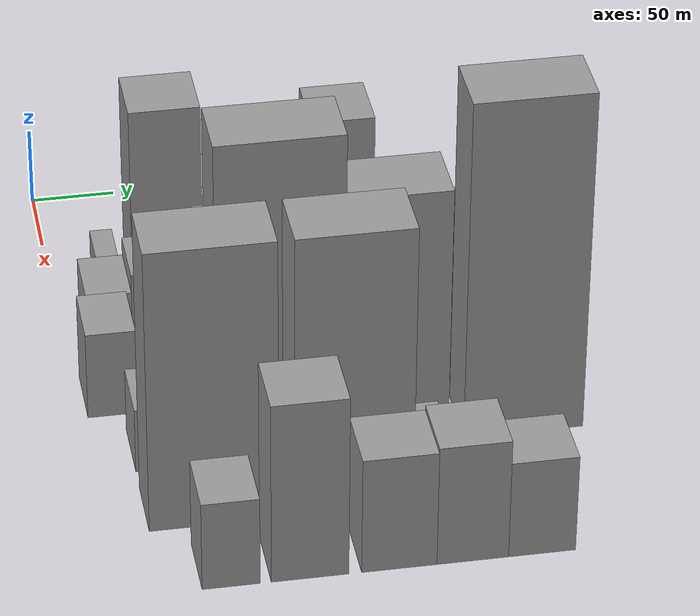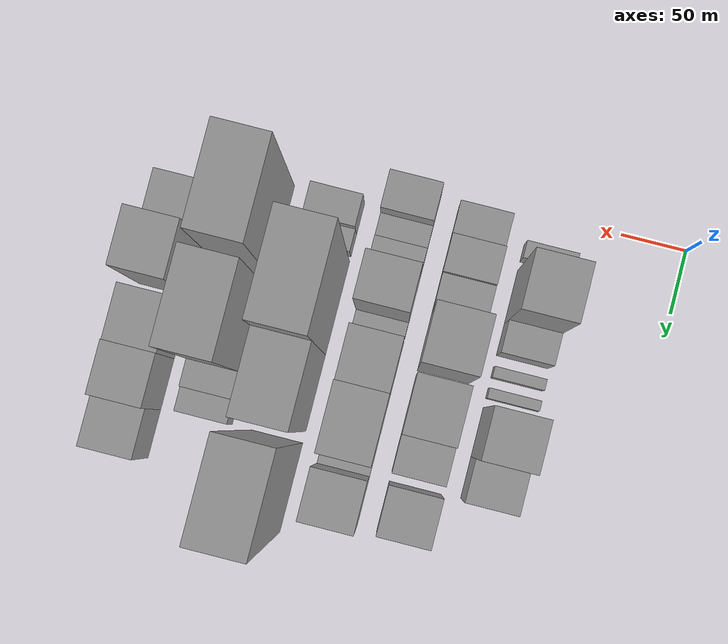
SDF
<sdf version="1.6">
 <world name="default">
  <model name="building_24">
   <static>1</static>
   <pose>100.0000 32.5815 0 0.000000 0.000000 0.000000</pose>
   <link name="link">
    <pose>0 0 13.50 0 0 0</pose>
    <collision name="collision"><geometry><box><size>40.0000 13.2220 27.0000</size></box></geometry></collision>
    <visual name="visual">
     <cast_shadows>0</cast_shadows>
     <geometry><box><size>40.0000 13.2220 27.0000</size></box></geometry>
     <material>
      <script>
       <uri>model://grey_wall/materials/scripts</uri>
       <uri>model://grey_wall/materials/textures</uri>
       <name>vrc/grey_wall</name>
      </script>
     </material>
    </visual>
   </link>
  </model>
  <model name="building_25">
   <static>1</static>
   <pose>100.0000 67.2017 0 0.000000 0.000000 0.000000</pose>
   <link name="link">
    <pose>0 0 66.00 0 0 0</pose>
    <collision name="collision"><geometry><box><size>40.0000 42.0183 132.0000</size></box></geometry></collision>
    <visual name="visual">
     <cast_shadows>0</cast_shadows>
     <geometry><box><size>40.0000 42.0183 132.0000</size></box></geometry>
     <material>
      <script>
       <uri>model://grey_wall/materials/scripts</uri>
       <uri>model://grey_wall/materials/textures</uri>
       <name>vrc/grey_wall</name>
      </script>
     </material>
    </visual>
   </link>
  </model>
  <model name="building_26">
   <static>1</static>
   <pose>100.0000 100.3961 0 0.000000 0.000000 0.000000</pose>
   <link name="link">
    <pose>0 0 22.50 0 0 0</pose>
    <collision name="collision"><geometry><box><size>40.0000 24.3704 45.0000</size></box></geometry></collision>
    <visual name="visual">
     <cast_shadows>0</cast_shadows>
     <geometry><box><size>40.0000 24.3704 45.0000</size></box></geometry>
     <material>
      <script>
       <uri>model://grey_wall/materials/scripts</uri>
       <uri>model://grey_wall/materials/textures</uri>
       <name>vrc/grey_wall</name>
      </script>
     </material>
    </visual>
   </link>
  </model>
  <model name="building_27">
   <static>1</static>
   <pose>100.0000 125.8456 0 0.000000 0.000000 0.000000</pose>
   <link name="link">
    <pose>0 0 9.00 0 0 0</pose>
    <collision name="collision"><geometry><box><size>40.0000 8.5287 18.0000</size></box></geometry></collision>
    <visual name="visual">
     <cast_shadows>0</cast_shadows>
     <geometry><box><size>40.0000 8.5287 18.0000</size></box></geometry>
     <material>
      <script>
       <uri>model://grey_wall/materials/scripts</uri>
       <uri>model://grey_wall/materials/textures</uri>
       <name>vrc/grey_wall</name>
      </script>
     </material>
    </visual>
   </link>
  </model>
  <model name="building_28">
   <static>1</static>
   <pose>100.0000 142.0890 0 0.000000 0.000000 0.000000</pose>
   <link name="link">
    <pose>0 0 9.00 0 0 0</pose>
    <collision name="collision"><geometry><box><size>40.0000 7.9579 18.0000</size></box></geometry></collision>
    <visual name="visual">
     <cast_shadows>0</cast_shadows>
     <geometry><box><size>40.0000 7.9579 18.0000</size></box></geometry>
     <material>
      <script>
       <uri>model://grey_wall/materials/scripts</uri>
       <uri>model://grey_wall/materials/textures</uri>
       <name>vrc/grey_wall</name>
      </script>
     </material>
    </visual>
   </link>
  </model>
  <model name="building_29">
   <static>1</static>
   <pose>100.0000 172.0794 0 0.000000 0.000000 0.000000</pose>
   <link name="link">
    <pose>0 0 57.00 0 0 0</pose>
    <collision name="collision"><geometry><box><size>40.0000 38.0229 114.0000</size></box></geometry></collision>
    <visual name="visual">
     <cast_shadows>0</cast_shadows>
     <geometry><box><size>40.0000 38.0229 114.0000</size></box></geometry>
     <material>
      <script>
       <uri>model://grey_wall/materials/scripts</uri>
       <uri>model://grey_wall/materials/textures</uri>
       <name>vrc/grey_wall</name>
      </script>
     </material>
    </visual>
   </link>
  </model>
  <model name="building_30">
   <static>1</static>
   <pose>100.0000 207.0768 0 0.000000 0.000000 0.000000</pose>
   <link name="link">
    <pose>0 0 30.00 0 0 0</pose>
    <collision name="collision"><geometry><box><size>40.0000 31.9721 60.0000</size></box></geometry></collision>
    <visual name="visual">
     <cast_shadows>0</cast_shadows>
     <geometry><box><size>40.0000 31.9721 60.0000</size></box></geometry>
     <material>
      <script>
       <uri>model://grey_wall/materials/scripts</uri>
       <uri>model://grey_wall/materials/textures</uri>
       <name>vrc/grey_wall</name>
      </script>
     </material>
    </visual>
   </link>
  </model>
  <model name="building_75">
   <static>1</static>
   <pose>155.0000 25.5011 0 0.000000 0.000000 0.000000</pose>
   <link name="link">
    <pose>0 0 22.50 0 0 0</pose>
    <collision name="collision"><geometry><box><size>40.0000 26.5037 45.0000</size></box></geometry></collision>
    <visual name="visual">
     <cast_shadows>0</cast_shadows>
     <geometry><box><size>40.0000 26.5037 45.0000</size></box></geometry>
     <material>
      <script>
       <uri>model://grey_wall/materials/scripts</uri>
       <uri>model://grey_wall/materials/textures</uri>
       <name>vrc/grey_wall</name>
      </script>
     </material>
    </visual>
   </link>
  </model>
  <model name="building_76">
   <static>1</static>
   <pose>155.0000 53.0796 0 0.000000 0.000000 0.000000</pose>
   <link name="link">
    <pose>0 0 28.50 0 0 0</pose>
    <collision name="collision"><geometry><box><size>40.0000 28.6533 57.0000</size></box></geometry></collision>
    <visual name="visual">
     <cast_shadows>0</cast_shadows>
     <geometry><box><size>40.0000 28.6533 57.0000</size></box></geometry>
     <material>
      <script>
       <uri>model://grey_wall/materials/scripts</uri>
       <uri>model://grey_wall/materials/textures</uri>
       <name>vrc/grey_wall</name>
      </script>
     </material>
    </visual>
   </link>
  </model>
  <model name="building_77">
   <static>1</static>
   <pose>155.0000 81.7268 0 0.000000 0.000000 0.000000</pose>
   <link name="link">
    <pose>0 0 25.50 0 0 0</pose>
    <collision name="collision"><geometry><box><size>40.0000 28.6413 51.0000</size></box></geometry></collision>
    <visual name="visual">
     <cast_shadows>0</cast_shadows>
     <geometry><box><size>40.0000 28.6413 51.0000</size></box></geometry>
     <material>
      <script>
       <uri>model://grey_wall/materials/scripts</uri>
       <uri>model://grey_wall/materials/textures</uri>
       <name>vrc/grey_wall</name>
      </script>
     </material>
    </visual>
   </link>
  </model>
  <model name="building_78">
   <static>1</static>
   <pose>155.0000 117.2070 0 0.000000 0.000000 0.000000</pose>
   <link name="link">
    <pose>0 0 67.50 0 0 0</pose>
    <collision name="collision"><geometry><box><size>40.0000 42.3190 135.0000</size></box></geometry></collision>
    <visual name="visual">
     <cast_shadows>0</cast_shadows>
     <geometry><box><size>40.0000 42.3190 135.0000</size></box></geometry>
     <material>
      <script>
       <uri>model://grey_wall/materials/scripts</uri>
       <uri>model://grey_wall/materials/textures</uri>
       <name>vrc/grey_wall</name>
      </script>
     </material>
    </visual>
   </link>
  </model>
  <model name="building_79">
   <static>1</static>
   <pose>155.0000 164.8329 0 0.000000 0.000000 0.000000</pose>
   <link name="link">
    <pose>0 0 37.50 0 0 0</pose>
    <collision name="collision"><geometry><box><size>40.0000 44.9328 75.0000</size></box></geometry></collision>
    <visual name="visual">
     <cast_shadows>0</cast_shadows>
     <geometry><box><size>40.0000 44.9328 75.0000</size></box></geometry>
     <material>
      <script>
       <uri>model://grey_wall/materials/scripts</uri>
       <uri>model://grey_wall/materials/textures</uri>
       <name>vrc/grey_wall</name>
      </script>
     </material>
    </visual>
   </link>
  </model>
  <model name="building_80">
   <static>1</static>
   <pose>155.0000 201.5827 0 0.000000 0.000000 0.000000</pose>
   <link name="link">
    <pose>0 0 27.00 0 0 0</pose>
    <collision name="collision"><geometry><box><size>40.0000 28.5667 54.0000</size></box></geometry></collision>
    <visual name="visual">
     <cast_shadows>0</cast_shadows>
     <geometry><box><size>40.0000 28.5667 54.0000</size></box></geometry>
     <material>
      <script>
       <uri>model://grey_wall/materials/scripts</uri>
       <uri>model://grey_wall/materials/textures</uri>
       <name>vrc/grey_wall</name>
      </script>
     </material>
    </visual>
   </link>
  </model>
  <model name="building_81">
   <static>1</static>
   <pose>155.0000 242.4506 0 0.000000 0.000000 0.000000</pose>
   <link name="link">
    <pose>0 0 33.00 0 0 0</pose>
    <collision name="collision"><geometry><box><size>40.0000 37.1691 66.0000</size></box></geometry></collision>
    <visual name="visual">
     <cast_shadows>0</cast_shadows>
     <geometry><box><size>40.0000 37.1691 66.0000</size></box></geometry>
     <material>
      <script>
       <uri>model://grey_wall/materials/scripts</uri>
       <uri>model://grey_wall/materials/textures</uri>
       <name>vrc/grey_wall</name>
      </script>
     </material>
    </visual>
   </link>
  </model>
  <model name="building_127">
   <static>1</static>
   <pose>210.0000 19.5524 0 0.000000 0.000000 0.000000</pose>
   <link name="link">
    <pose>0 0 28.50 0 0 0</pose>
    <collision name="collision"><geometry><box><size>40.0000 28.5768 57.0000</size></box></geometry></collision>
    <visual name="visual">
     <cast_shadows>0</cast_shadows>
     <geometry><box><size>40.0000 28.5768 57.0000</size></box></geometry>
     <material>
      <script>
       <uri>model://grey_wall/materials/scripts</uri>
       <uri>model://grey_wall/materials/textures</uri>
       <name>vrc/grey_wall</name>
      </script>
     </material>
    </visual>
   </link>
  </model>
  <model name="building_128">
   <static>1</static>
   <pose>210.0000 42.5405 0 0.000000 0.000000 0.000000</pose>
   <link name="link">
    <pose>0 0 16.50 0 0 0</pose>
    <collision name="collision"><geometry><box><size>40.0000 17.3992 33.0000</size></box></geometry></collision>
    <visual name="visual">
     <cast_shadows>0</cast_shadows>
     <geometry><box><size>40.0000 17.3992 33.0000</size></box></geometry>
     <material>
      <script>
       <uri>model://grey_wall/materials/scripts</uri>
       <uri>model://grey_wall/materials/textures</uri>
       <name>vrc/grey_wall</name>
      </script>
     </material>
    </visual>
   </link>
  </model>
  <model name="building_129">
   <static>1</static>
   <pose>210.0000 61.5705 0 0.000000 0.000000 0.000000</pose>
   <link name="link">
    <pose>0 0 18.00 0 0 0</pose>
    <collision name="collision"><geometry><box><size>40.0000 20.6608 36.0000</size></box></geometry></collision>
    <visual name="visual">
     <cast_shadows>0</cast_shadows>
     <geometry><box><size>40.0000 20.6608 36.0000</size></box></geometry>
     <material>
      <script>
       <uri>model://grey_wall/materials/scripts</uri>
       <uri>model://grey_wall/materials/textures</uri>
       <name>vrc/grey_wall</name>
      </script>
     </material>
    </visual>
   </link>
  </model>
  <model name="building_130">
   <static>1</static>
   <pose>210.0000 89.4102 0 0.000000 0.000000 0.000000</pose>
   <link name="link">
    <pose>0 0 55.50 0 0 0</pose>
    <collision name="collision"><geometry><box><size>40.0000 35.0187 111.0000</size></box></geometry></collision>
    <visual name="visual">
     <cast_shadows>0</cast_shadows>
     <geometry><box><size>40.0000 35.0187 111.0000</size></box></geometry>
     <material>
      <script>
       <uri>model://grey_wall/materials/scripts</uri>
       <uri>model://grey_wall/materials/textures</uri>
       <name>vrc/grey_wall</name>
      </script>
     </material>
    </visual>
   </link>
  </model>
  <model name="building_131">
   <static>1</static>
   <pose>210.0000 112.4878 0 0.000000 0.000000 0.000000</pose>
   <link name="link">
    <pose>0 0 13.50 0 0 0</pose>
    <collision name="collision"><geometry><box><size>40.0000 11.1364 27.0000</size></box></geometry></collision>
    <visual name="visual">
     <cast_shadows>0</cast_shadows>
     <geometry><box><size>40.0000 11.1364 27.0000</size></box></geometry>
     <material>
      <script>
       <uri>model://grey_wall/materials/scripts</uri>
       <uri>model://grey_wall/materials/textures</uri>
       <name>vrc/grey_wall</name>
      </script>
     </material>
    </visual>
   </link>
  </model>
  <model name="building_132">
   <static>1</static>
   <pose>210.0000 141.6310 0 0.000000 0.000000 0.000000</pose>
   <link name="link">
    <pose>0 0 39.00 0 0 0</pose>
    <collision name="collision"><geometry><box><size>40.0000 41.1501 78.0000</size></box></geometry></collision>
    <visual name="visual">
     <cast_shadows>0</cast_shadows>
     <geometry><box><size>40.0000 41.1501 78.0000</size></box></geometry>
     <material>
      <script>
       <uri>model://grey_wall/materials/scripts</uri>
       <uri>model://grey_wall/materials/textures</uri>
       <name>vrc/grey_wall</name>
      </script>
     </material>
    </visual>
   </link>
  </model>
  <model name="building_133">
   <static>1</static>
   <pose>210.0000 188.3251 0 0.000000 0.000000 0.000000</pose>
   <link name="link">
    <pose>0 0 45.00 0 0 0</pose>
    <collision name="collision"><geometry><box><size>40.0000 52.2381 90.0000</size></box></geometry></collision>
    <visual name="visual">
     <cast_shadows>0</cast_shadows>
     <geometry><box><size>40.0000 52.2381 90.0000</size></box></geometry>
     <material>
      <script>
       <uri>model://grey_wall/materials/scripts</uri>
       <uri>model://grey_wall/materials/textures</uri>
       <name>vrc/grey_wall</name>
      </script>
     </material>
    </visual>
   </link>
  </model>
  <model name="building_134">
   <static>1</static>
   <pose>210.0000 218.9743 0 0.000000 0.000000 0.000000</pose>
   <link name="link">
    <pose>0 0 10.50 0 0 0</pose>
    <collision name="collision"><geometry><box><size>40.0000 9.0602 21.0000</size></box></geometry></collision>
    <visual name="visual">
     <cast_shadows>0</cast_shadows>
     <geometry><box><size>40.0000 9.0602 21.0000</size></box></geometry>
     <material>
      <script>
       <uri>model://grey_wall/materials/scripts</uri>
       <uri>model://grey_wall/materials/textures</uri>
       <name>vrc/grey_wall</name>
      </script>
     </material>
    </visual>
   </link>
  </model>
  <model name="building_135">
   <static>1</static>
   <pose>210.0000 242.5876 0 0.000000 0.000000 0.000000</pose>
   <link name="link">
    <pose>0 0 49.50 0 0 0</pose>
    <collision name="collision"><geometry><box><size>40.0000 38.1665 99.0000</size></box></geometry></collision>
    <visual name="visual">
     <cast_shadows>0</cast_shadows>
     <geometry><box><size>40.0000 38.1665 99.0000</size></box></geometry>
     <material>
      <script>
       <uri>model://grey_wall/materials/scripts</uri>
       <uri>model://grey_wall/materials/textures</uri>
       <name>vrc/grey_wall</name>
      </script>
     </material>
    </visual>
   </link>
  </model>
  <model name="building_180">
   <static>1</static>
   <pose>265.0000 37.5542 0 0.000000 0.000000 0.000000</pose>
   <link name="link">
    <pose>0 0 21.00 0 0 0</pose>
    <collision name="collision"><geometry><box><size>40.0000 24.5937 42.0000</size></box></geometry></collision>
    <visual name="visual">
     <cast_shadows>0</cast_shadows>
     <geometry><box><size>40.0000 24.5937 42.0000</size></box></geometry>
     <material>
      <script>
       <uri>model://grey_wall/materials/scripts</uri>
       <uri>model://grey_wall/materials/textures</uri>
       <name>vrc/grey_wall</name>
      </script>
     </material>
    </visual>
   </link>
  </model>
  <model name="building_181">
   <static>1</static>
   <pose>265.0000 58.4927 0 0.000000 0.000000 0.000000</pose>
   <link name="link">
    <pose>0 0 15.00 0 0 0</pose>
    <collision name="collision"><geometry><box><size>40.0000 17.2833 30.0000</size></box></geometry></collision>
    <visual name="visual">
     <cast_shadows>0</cast_shadows>
     <geometry><box><size>40.0000 17.2833 30.0000</size></box></geometry>
     <material>
      <script>
       <uri>model://grey_wall/materials/scripts</uri>
       <uri>model://grey_wall/materials/textures</uri>
       <name>vrc/grey_wall</name>
      </script>
     </material>
    </visual>
   </link>
  </model>
  <model name="building_182">
   <static>1</static>
   <pose>265.0000 107.6291 0 0.000000 0.000000 0.000000</pose>
   <link name="link">
    <pose>0 0 105.00 0 0 0</pose>
    <collision name="collision"><geometry><box><size>40.0000 72.9895 210.0000</size></box></geometry></collision>
    <visual name="visual">
     <cast_shadows>0</cast_shadows>
     <geometry><box><size>40.0000 72.9895 210.0000</size></box></geometry>
     <material>
      <script>
       <uri>model://grey_wall/materials/scripts</uri>
       <uri>model://grey_wall/materials/textures</uri>
       <name>vrc/grey_wall</name>
      </script>
     </material>
    </visual>
   </link>
  </model>
  <model name="building_183">
   <static>1</static>
   <pose>265.0000 173.7679 0 0.000000 0.000000 0.000000</pose>
   <link name="link">
    <pose>0 0 84.00 0 0 0</pose>
    <collision name="collision"><geometry><box><size>40.0000 59.2882 168.0000</size></box></geometry></collision>
    <visual name="visual">
     <cast_shadows>0</cast_shadows>
     <geometry><box><size>40.0000 59.2882 168.0000</size></box></geometry>
     <material>
      <script>
       <uri>model://grey_wall/materials/scripts</uri>
       <uri>model://grey_wall/materials/textures</uri>
       <name>vrc/grey_wall</name>
      </script>
     </material>
    </visual>
   </link>
  </model>
  <model name="building_184">
   <static>1</static>
   <pose>265.0000 246.9088 0 0.000000 0.000000 0.000000</pose>
   <link name="link">
    <pose>0 0 111.00 0 0 0</pose>
    <collision name="collision"><geometry><box><size>40.0000 68.9936 222.0000</size></box></geometry></collision>
    <visual name="visual">
     <cast_shadows>0</cast_shadows>
     <geometry><box><size>40.0000 68.9936 222.0000</size></box></geometry>
     <material>
      <script>
       <uri>model://grey_wall/materials/scripts</uri>
       <uri>model://grey_wall/materials/textures</uri>
       <name>vrc/grey_wall</name>
      </script>
     </material>
    </visual>
   </link>
  </model>
  <model name="building_229">
   <static>1</static>
   <pose>320.0000 61.1413 0 0.000000 0.000000 0.000000</pose>
   <link name="link">
    <pose>0 0 91.50 0 0 0</pose>
    <collision name="collision"><geometry><box><size>40.0000 71.9783 183.0000</size></box></geometry></collision>
    <visual name="visual">
     <cast_shadows>0</cast_shadows>
     <geometry><box><size>40.0000 71.9783 183.0000</size></box></geometry>
     <material>
      <script>
       <uri>model://grey_wall/materials/scripts</uri>
       <uri>model://grey_wall/materials/textures</uri>
       <name>vrc/grey_wall</name>
      </script>
     </material>
    </visual>
   </link>
  </model>
  <model name="building_230">
   <static>1</static>
   <pose>320.0000 139.4884 0 0.000000 0.000000 0.000000</pose>
   <link name="link">
    <pose>0 0 91.50 0 0 0</pose>
    <collision name="collision"><geometry><box><size>40.0000 66.7158 183.0000</size></box></geometry></collision>
    <visual name="visual">
     <cast_shadows>0</cast_shadows>
     <geometry><box><size>40.0000 66.7158 183.0000</size></box></geometry>
     <material>
      <script>
       <uri>model://grey_wall/materials/scripts</uri>
       <uri>model://grey_wall/materials/textures</uri>
       <name>vrc/grey_wall</name>
      </script>
     </material>
    </visual>
   </link>
  </model>
  <model name="building_231">
   <static>1</static>
   <pose>320.0000 183.2553 0 0.000000 0.000000 0.000000</pose>
   <link name="link">
    <pose>0 0 19.50 0 0 0</pose>
    <collision name="collision"><geometry><box><size>40.0000 20.8181 39.0000</size></box></geometry></collision>
    <visual name="visual">
     <cast_shadows>0</cast_shadows>
     <geometry><box><size>40.0000 20.8181 39.0000</size></box></geometry>
     <material>
      <script>
       <uri>model://grey_wall/materials/scripts</uri>
       <uri>model://grey_wall/materials/textures</uri>
       <name>vrc/grey_wall</name>
      </script>
     </material>
    </visual>
   </link>
  </model>
  <model name="building_232">
   <static>1</static>
   <pose>320.0000 202.8331 0 0.000000 0.000000 0.000000</pose>
   <link name="link">
    <pose>0 0 16.50 0 0 0</pose>
    <collision name="collision"><geometry><box><size>40.0000 18.3374 33.0000</size></box></geometry></collision>
    <visual name="visual">
     <cast_shadows>0</cast_shadows>
     <geometry><box><size>40.0000 18.3374 33.0000</size></box></geometry>
     <material>
      <script>
       <uri>model://grey_wall/materials/scripts</uri>
       <uri>model://grey_wall/materials/textures</uri>
       <name>vrc/grey_wall</name>
      </script>
     </material>
    </visual>
   </link>
  </model>
  <model name="building_278">
   <static>1</static>
   <pose>375.0000 62.0414 0 0.000000 0.000000 0.000000</pose>
   <link name="link">
    <pose>0 0 28.50 0 0 0</pose>
    <collision name="collision"><geometry><box><size>40.0000 31.7304 57.0000</size></box></geometry></collision>
    <visual name="visual">
     <cast_shadows>0</cast_shadows>
     <geometry><box><size>40.0000 31.7304 57.0000</size></box></geometry>
     <material>
      <script>
       <uri>model://grey_wall/materials/scripts</uri>
       <uri>model://grey_wall/materials/textures</uri>
       <name>vrc/grey_wall</name>
      </script>
     </material>
    </visual>
   </link>
  </model>
  <model name="building_279">
   <static>1</static>
   <pose>375.0000 105.1777 0 0.000000 0.000000 0.000000</pose>
   <link name="link">
    <pose>0 0 58.50 0 0 0</pose>
    <collision name="collision"><geometry><box><size>40.0000 42.5422 117.0000</size></box></geometry></collision>
    <visual name="visual">
     <cast_shadows>0</cast_shadows>
     <geometry><box><size>40.0000 42.5422 117.0000</size></box></geometry>
     <material>
      <script>
       <uri>model://grey_wall/materials/scripts</uri>
       <uri>model://grey_wall/materials/textures</uri>
       <name>vrc/grey_wall</name>
      </script>
     </material>
    </visual>
   </link>
  </model>
  <model name="building_280">
   <static>1</static>
   <pose>375.0000 154.2229 0 0.000000 0.000000 0.000000</pose>
   <link name="link">
    <pose>0 0 37.50 0 0 0</pose>
    <collision name="collision"><geometry><box><size>40.0000 41.5481 75.0000</size></box></geometry></collision>
    <visual name="visual">
     <cast_shadows>0</cast_shadows>
     <geometry><box><size>40.0000 41.5481 75.0000</size></box></geometry>
     <material>
      <script>
       <uri>model://grey_wall/materials/scripts</uri>
       <uri>model://grey_wall/materials/textures</uri>
       <name>vrc/grey_wall</name>
      </script>
     </material>
    </visual>
   </link>
  </model>
  <model name="building_281">
   <static>1</static>
   <pose>375.0000 194.8468 0 0.000000 0.000000 0.000000</pose>
   <link name="link">
    <pose>0 0 39.00 0 0 0</pose>
    <collision name="collision"><geometry><box><size>40.0000 39.6998 78.0000</size></box></geometry></collision>
    <visual name="visual">
     <cast_shadows>0</cast_shadows>
     <geometry><box><size>40.0000 39.6998 78.0000</size></box></geometry>
     <material>
      <script>
       <uri>model://grey_wall/materials/scripts</uri>
       <uri>model://grey_wall/materials/textures</uri>
       <name>vrc/grey_wall</name>
      </script>
     </material>
    </visual>
   </link>
  </model>
  <model name="building_282">
   <static>1</static>
   <pose>375.0000 233.3361 0 0.000000 0.000000 0.000000</pose>
   <link name="link">
    <pose>0 0 31.50 0 0 0</pose>
    <collision name="collision"><geometry><box><size>40.0000 37.2787 63.0000</size></box></geometry></collision>
    <visual name="visual">
     <cast_shadows>0</cast_shadows>
     <geometry><box><size>40.0000 37.2787 63.0000</size></box></geometry>
     <material>
      <script>
       <uri>model://grey_wall/materials/scripts</uri>
       <uri>model://grey_wall/materials/textures</uri>
       <name>vrc/grey_wall</name>
      </script>
     </material>
    </visual>
   </link>
  </model>
 </world>
</sdf>
